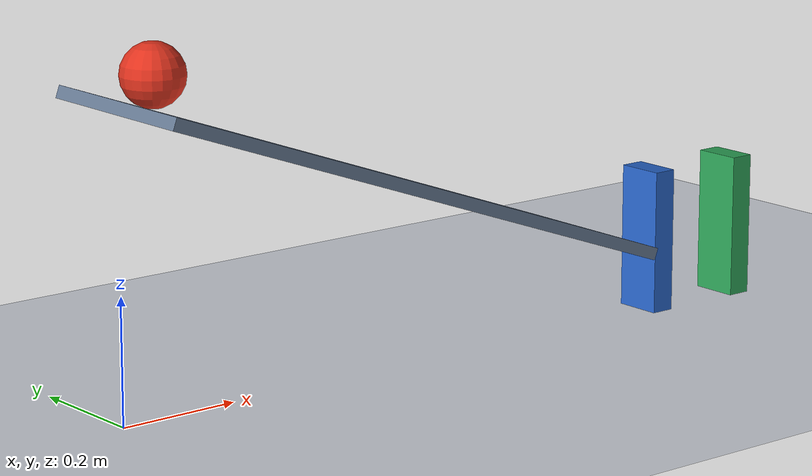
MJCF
<mujoco model="ramp_ball_domino_chain">
  <compiler angle="degree" inertiafromgeom="true"/>
  <option timestep="0.002" gravity="0 0 -9.81" integrator="implicitfast" solver="Newton" iterations="80" cone="elliptic"/>

  <!-- MuJoCo has no direct restitution attribute. The solref damping ratio below targets approximately 0.05 restitution. -->
  <!-- Sliding friction is 0.70; small torsional and rolling resistance allow the ball to settle. -->
  <!-- Only free joints are needed; the specified hinge and slide damping values therefore have no applicable joints. -->

  <visual>
    <headlight ambient="0.4 0.4 0.4" diffuse="0.7 0.7 0.7" specular="0.2 0.2 0.2"/>
  </visual>

  <worldbody>
    <light name="main_light" pos="0 -2 4" dir="0 0 -1"/>
    <camera name="overview" pos="0.8 -3 1.7" xyaxes="1 0 0 0 0.4472136 0.8944272"/>

    <geom name="floor" type="plane" pos="0 0 0" size="4 2 0.1" friction="0.70 0.005 0.005" condim="6" solref="0.004 0.690107" solimp="0.99 0.99 0.001" rgba="0.85 0.87 0.90 1"/>

    <!-- The ramp's upper surface is 1.00 m long and 0.30 m wide. -->
    <!-- Its high edge is at (0, 0, 0.492020143); its low edge is at (0.939692621, 0, 0.15). -->
    <body name="ramp1" pos="0.466426108 0 0.311613145" euler="0 20 0">
      <geom name="ramp1_surface" type="box" size="0.50 0.15 0.01" mass="5" friction="0.70 0.005 0.005" condim="6" solref="0.004 0.690107" solimp="0.99 0.99 0.001" rgba="0.40 0.48 0.58 1"/>
    </body>

    <!-- Ball center is one radius above the surface, 0.05 m along the ramp from its high edge. -->
    <body name="ball1" pos="0.064085638 0 0.521903743">
      <freejoint name="ball1_free"/>
      <geom name="ball1_sphere" type="sphere" size="0.05" mass="0.20" friction="0.70 0.005 0.005" condim="6" solref="0.004 0.690107" solimp="0.99 0.99 0.001" rgba="0.88 0.20 0.12 1"/>
    </body>

    <!-- Dominoes have 0.04 m thickness along the travel direction, 0.08 m width, and 0.24 m height. -->
    <!-- Domino1's near face is exactly 0.10 m beyond the ramp's low edge in x. -->
    <body name="domino1" pos="1.059692621 0 0.12">
      <freejoint name="domino1_free"/>
      <geom name="domino1_box" type="box" size="0.02 0.04 0.12" mass="0.25" friction="0.70 0.005 0.005" condim="6" solref="0.004 0.690107" solimp="0.99 0.99 0.001" rgba="0.16 0.40 0.80 1"/>
    </body>

    <!-- Domino center spacing is 0.18 m. -->
    <body name="domino2" pos="1.239692621 0 0.12">
      <freejoint name="domino2_free"/>
      <geom name="domino2_box" type="box" size="0.02 0.04 0.12" mass="0.25" friction="0.70 0.005 0.005" condim="6" solref="0.004 0.690107" solimp="0.99 0.99 0.001" rgba="0.18 0.65 0.35 1"/>
    </body>
  </worldbody>

  <keyframe>
    <key name="start" time="0" qpos="0.064085638 0 0.521903743 1 0 0 0 1.059692621 0 0.12 1 0 0 0 1.239692621 0 0.12 1 0 0 0" qvel="0 0 0 0 0 0 0 0 0 0 0 0 0 0 0 0 0 0"/>
  </keyframe>
</mujoco>
